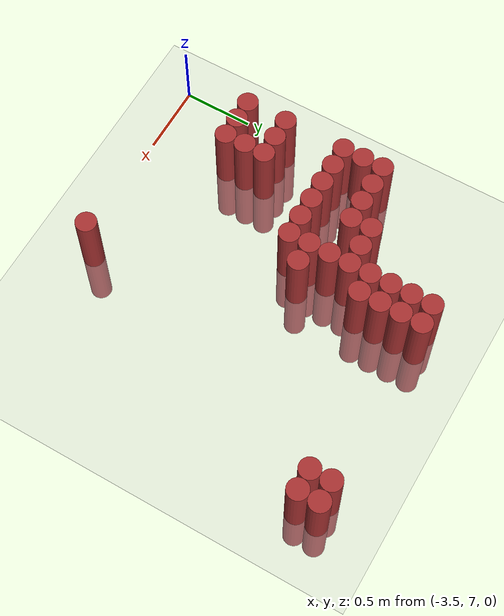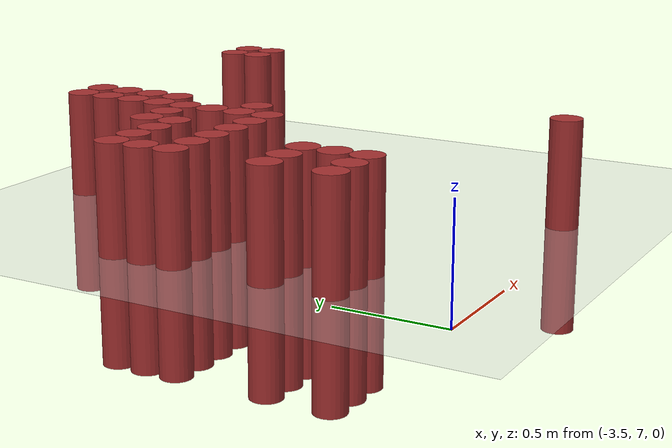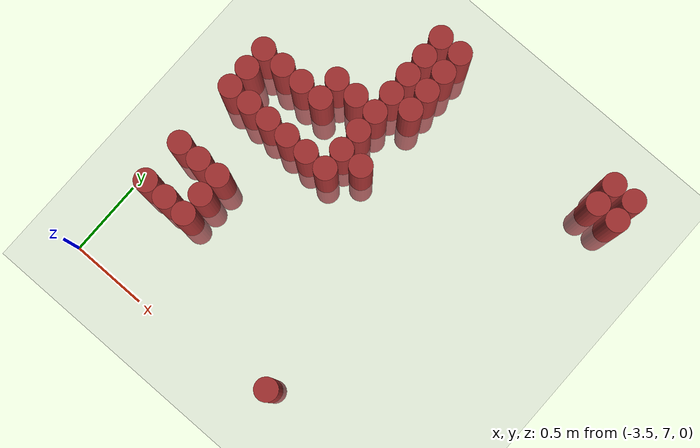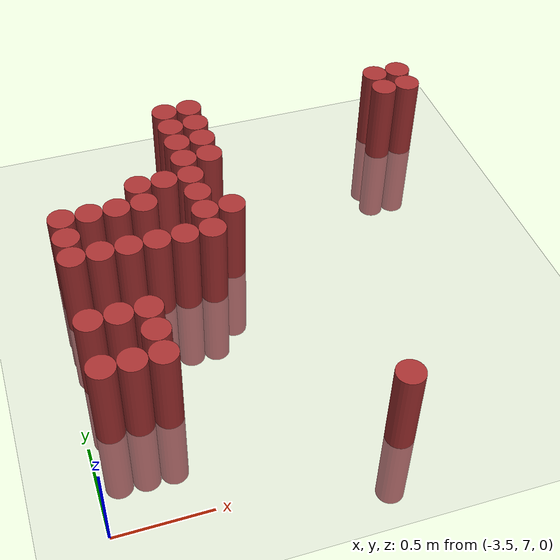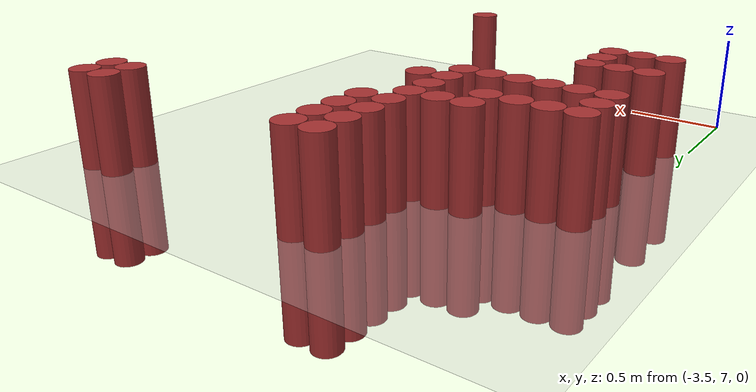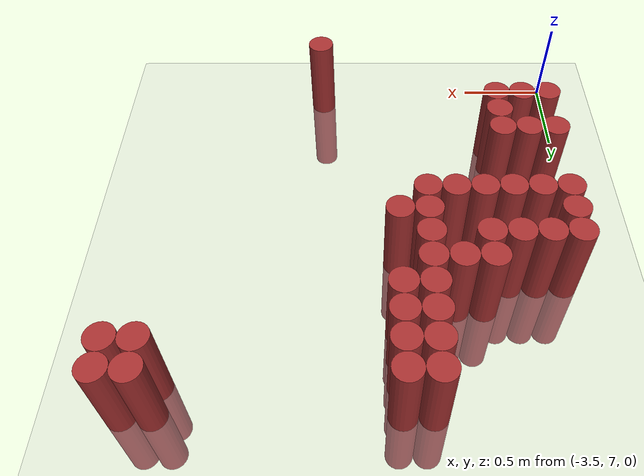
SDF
<sdf version="1.6">
 <world name="default">
  <model name="ground_plane">
   <static>1</static>
   <link name="link">
    <collision name="collision">
     <geometry><plane><normal>0 0 1</normal><size>100 100</size></plane></geometry>
     <surface><friction><ode><mu>100</mu><mu2>50</mu2></ode></friction></surface>
    </collision>
    <visual name="visual">
     <cast_shadows>0</cast_shadows>
     <geometry><plane><normal>0 0 1</normal><size>100 100</size></plane></geometry>
     <material>
      <script><uri>file://media/materials/scripts/gazebo.material</uri><name>Gazebo/Grey</name></script>
     </material>
    </visual>
   </link>
  </model>
  <model name="unit_cylinder_189">
   <static>1</static>
   <pose>-3.375000 7.575000 0.000000 0.000000 0.000000 0.000000</pose>
   <link name="link">
    <inertial>
     <mass>1</mass>
     <inertia><ixx>0.145833</ixx><ixy>0</ixy><ixz>0</ixz><iyy>0.145833</iyy><iyz>0</iyz><izz>0.125</izz></inertia>
    </inertial>
    <collision name="collision">
     <geometry><cylinder><radius>0.075000</radius><length>1</length></cylinder></geometry>
    </collision>
    <visual name="visual">
     <geometry><cylinder><radius>0.075000</radius><length>1</length></cylinder></geometry>
     <material>
      <ambient>0.648000 0.192000 0.192000 1</ambient>
      <diffuse>0.648000 0.192000 0.192000 1</diffuse>
     </material>
     <material>
      <script><name>Gazebo/Grey</name><uri>file://media/materials/scripts/gazebo.material</uri></script>
     </material>
    </visual>
    <sensor name="sensor_contact" type="contact"><contact><collision>collision</collision></contact></sensor>
   </link>
   <plugin filename="gz-sim-touchplugin-system" name="gz::sim::systems::TouchPlugin">
    <target>robot</target>
    <namespace>robot</namespace>
    <time>0.001</time>
    <enabled>true</enabled>
   </plugin>
  </model>
  <model name="unit_cylinder_190">
   <static>1</static>
   <pose>-3.375000 7.875000 0.000000 0.000000 0.000000 0.000000</pose>
   <link name="link">
    <inertial>
     <mass>1</mass>
     <inertia><ixx>0.145833</ixx><ixy>0</ixy><ixz>0</ixz><iyy>0.145833</iyy><iyz>0</iyz><izz>0.125</izz></inertia>
    </inertial>
    <collision name="collision">
     <geometry><cylinder><radius>0.075000</radius><length>1</length></cylinder></geometry>
    </collision>
    <visual name="visual">
     <geometry><cylinder><radius>0.075000</radius><length>1</length></cylinder></geometry>
     <material>
      <ambient>0.648000 0.192000 0.192000 1</ambient>
      <diffuse>0.648000 0.192000 0.192000 1</diffuse>
     </material>
     <material>
      <script><name>Gazebo/Grey</name><uri>file://media/materials/scripts/gazebo.material</uri></script>
     </material>
    </visual>
    <sensor name="sensor_contact" type="contact"><contact><collision>collision</collision></contact></sensor>
   </link>
   <plugin filename="gz-sim-touchplugin-system" name="gz::sim::systems::TouchPlugin">
    <target>robot</target>
    <namespace>robot</namespace>
    <time>0.001</time>
    <enabled>true</enabled>
   </plugin>
  </model>
  <model name="unit_cylinder_191">
   <static>1</static>
   <pose>-3.375000 8.325000 0.000000 0.000000 0.000000 0.000000</pose>
   <link name="link">
    <inertial>
     <mass>1</mass>
     <inertia><ixx>0.145833</ixx><ixy>0</ixy><ixz>0</ixz><iyy>0.145833</iyy><iyz>0</iyz><izz>0.125</izz></inertia>
    </inertial>
    <collision name="collision">
     <geometry><cylinder><radius>0.075000</radius><length>1</length></cylinder></geometry>
    </collision>
    <visual name="visual">
     <geometry><cylinder><radius>0.075000</radius><length>1</length></cylinder></geometry>
     <material>
      <ambient>0.648000 0.192000 0.192000 1</ambient>
      <diffuse>0.648000 0.192000 0.192000 1</diffuse>
     </material>
     <material>
      <script><name>Gazebo/Grey</name><uri>file://media/materials/scripts/gazebo.material</uri></script>
     </material>
    </visual>
    <sensor name="sensor_contact" type="contact"><contact><collision>collision</collision></contact></sensor>
   </link>
   <plugin filename="gz-sim-touchplugin-system" name="gz::sim::systems::TouchPlugin">
    <target>robot</target>
    <namespace>robot</namespace>
    <time>0.001</time>
    <enabled>true</enabled>
   </plugin>
  </model>
  <model name="unit_cylinder_192">
   <static>1</static>
   <pose>-3.375000 8.475000 0.000000 0.000000 0.000000 0.000000</pose>
   <link name="link">
    <inertial>
     <mass>1</mass>
     <inertia><ixx>0.145833</ixx><ixy>0</ixy><ixz>0</ixz><iyy>0.145833</iyy><iyz>0</iyz><izz>0.125</izz></inertia>
    </inertial>
    <collision name="collision">
     <geometry><cylinder><radius>0.075000</radius><length>1</length></cylinder></geometry>
    </collision>
    <visual name="visual">
     <geometry><cylinder><radius>0.075000</radius><length>1</length></cylinder></geometry>
     <material>
      <ambient>0.648000 0.192000 0.192000 1</ambient>
      <diffuse>0.648000 0.192000 0.192000 1</diffuse>
     </material>
     <material>
      <script><name>Gazebo/Grey</name><uri>file://media/materials/scripts/gazebo.material</uri></script>
     </material>
    </visual>
    <sensor name="sensor_contact" type="contact"><contact><collision>collision</collision></contact></sensor>
   </link>
   <plugin filename="gz-sim-touchplugin-system" name="gz::sim::systems::TouchPlugin">
    <target>robot</target>
    <namespace>robot</namespace>
    <time>0.001</time>
    <enabled>true</enabled>
   </plugin>
  </model>
  <model name="unit_cylinder_193">
   <static>1</static>
   <pose>-3.375000 8.625000 0.000000 0.000000 0.000000 0.000000</pose>
   <link name="link">
    <inertial>
     <mass>1</mass>
     <inertia><ixx>0.145833</ixx><ixy>0</ixy><ixz>0</ixz><iyy>0.145833</iyy><iyz>0</iyz><izz>0.125</izz></inertia>
    </inertial>
    <collision name="collision">
     <geometry><cylinder><radius>0.075000</radius><length>1</length></cylinder></geometry>
    </collision>
    <visual name="visual">
     <geometry><cylinder><radius>0.075000</radius><length>1</length></cylinder></geometry>
     <material>
      <ambient>0.648000 0.192000 0.192000 1</ambient>
      <diffuse>0.648000 0.192000 0.192000 1</diffuse>
     </material>
     <material>
      <script><name>Gazebo/Grey</name><uri>file://media/materials/scripts/gazebo.material</uri></script>
     </material>
    </visual>
    <sensor name="sensor_contact" type="contact"><contact><collision>collision</collision></contact></sensor>
   </link>
   <plugin filename="gz-sim-touchplugin-system" name="gz::sim::systems::TouchPlugin">
    <target>robot</target>
    <namespace>robot</namespace>
    <time>0.001</time>
    <enabled>true</enabled>
   </plugin>
  </model>
  <model name="unit_cylinder_194">
   <static>1</static>
   <pose>-3.225000 7.575000 0.000000 0.000000 0.000000 0.000000</pose>
   <link name="link">
    <inertial>
     <mass>1</mass>
     <inertia><ixx>0.145833</ixx><ixy>0</ixy><ixz>0</ixz><iyy>0.145833</iyy><iyz>0</iyz><izz>0.125</izz></inertia>
    </inertial>
    <collision name="collision">
     <geometry><cylinder><radius>0.075000</radius><length>1</length></cylinder></geometry>
    </collision>
    <visual name="visual">
     <geometry><cylinder><radius>0.075000</radius><length>1</length></cylinder></geometry>
     <material>
      <ambient>0.648000 0.192000 0.192000 1</ambient>
      <diffuse>0.648000 0.192000 0.192000 1</diffuse>
     </material>
     <material>
      <script><name>Gazebo/Grey</name><uri>file://media/materials/scripts/gazebo.material</uri></script>
     </material>
    </visual>
    <sensor name="sensor_contact" type="contact"><contact><collision>collision</collision></contact></sensor>
   </link>
   <plugin filename="gz-sim-touchplugin-system" name="gz::sim::systems::TouchPlugin">
    <target>robot</target>
    <namespace>robot</namespace>
    <time>0.001</time>
    <enabled>true</enabled>
   </plugin>
  </model>
  <model name="unit_cylinder_195">
   <static>1</static>
   <pose>-3.225000 7.875000 0.000000 0.000000 0.000000 0.000000</pose>
   <link name="link">
    <inertial>
     <mass>1</mass>
     <inertia><ixx>0.145833</ixx><ixy>0</ixy><ixz>0</ixz><iyy>0.145833</iyy><iyz>0</iyz><izz>0.125</izz></inertia>
    </inertial>
    <collision name="collision">
     <geometry><cylinder><radius>0.075000</radius><length>1</length></cylinder></geometry>
    </collision>
    <visual name="visual">
     <geometry><cylinder><radius>0.075000</radius><length>1</length></cylinder></geometry>
     <material>
      <ambient>0.648000 0.192000 0.192000 1</ambient>
      <diffuse>0.648000 0.192000 0.192000 1</diffuse>
     </material>
     <material>
      <script><name>Gazebo/Grey</name><uri>file://media/materials/scripts/gazebo.material</uri></script>
     </material>
    </visual>
    <sensor name="sensor_contact" type="contact"><contact><collision>collision</collision></contact></sensor>
   </link>
   <plugin filename="gz-sim-touchplugin-system" name="gz::sim::systems::TouchPlugin">
    <target>robot</target>
    <namespace>robot</namespace>
    <time>0.001</time>
    <enabled>true</enabled>
   </plugin>
  </model>
  <model name="unit_cylinder_196">
   <static>1</static>
   <pose>-3.225000 8.325000 0.000000 0.000000 0.000000 0.000000</pose>
   <link name="link">
    <inertial>
     <mass>1</mass>
     <inertia><ixx>0.145833</ixx><ixy>0</ixy><ixz>0</ixz><iyy>0.145833</iyy><iyz>0</iyz><izz>0.125</izz></inertia>
    </inertial>
    <collision name="collision">
     <geometry><cylinder><radius>0.075000</radius><length>1</length></cylinder></geometry>
    </collision>
    <visual name="visual">
     <geometry><cylinder><radius>0.075000</radius><length>1</length></cylinder></geometry>
     <material>
      <ambient>0.648000 0.192000 0.192000 1</ambient>
      <diffuse>0.648000 0.192000 0.192000 1</diffuse>
     </material>
     <material>
      <script><name>Gazebo/Grey</name><uri>file://media/materials/scripts/gazebo.material</uri></script>
     </material>
    </visual>
    <sensor name="sensor_contact" type="contact"><contact><collision>collision</collision></contact></sensor>
   </link>
   <plugin filename="gz-sim-touchplugin-system" name="gz::sim::systems::TouchPlugin">
    <target>robot</target>
    <namespace>robot</namespace>
    <time>0.001</time>
    <enabled>true</enabled>
   </plugin>
  </model>
  <model name="unit_cylinder_197">
   <static>1</static>
   <pose>-3.225000 8.625000 0.000000 0.000000 0.000000 0.000000</pose>
   <link name="link">
    <inertial>
     <mass>1</mass>
     <inertia><ixx>0.145833</ixx><ixy>0</ixy><ixz>0</ixz><iyy>0.145833</iyy><iyz>0</iyz><izz>0.125</izz></inertia>
    </inertial>
    <collision name="collision">
     <geometry><cylinder><radius>0.075000</radius><length>1</length></cylinder></geometry>
    </collision>
    <visual name="visual">
     <geometry><cylinder><radius>0.075000</radius><length>1</length></cylinder></geometry>
     <material>
      <ambient>0.648000 0.192000 0.192000 1</ambient>
      <diffuse>0.648000 0.192000 0.192000 1</diffuse>
     </material>
     <material>
      <script><name>Gazebo/Grey</name><uri>file://media/materials/scripts/gazebo.material</uri></script>
     </material>
    </visual>
    <sensor name="sensor_contact" type="contact"><contact><collision>collision</collision></contact></sensor>
   </link>
   <plugin filename="gz-sim-touchplugin-system" name="gz::sim::systems::TouchPlugin">
    <target>robot</target>
    <namespace>robot</namespace>
    <time>0.001</time>
    <enabled>true</enabled>
   </plugin>
  </model>
  <model name="unit_cylinder_199">
   <static>1</static>
   <pose>-3.075000 7.575000 0.000000 0.000000 0.000000 0.000000</pose>
   <link name="link">
    <inertial>
     <mass>1</mass>
     <inertia><ixx>0.145833</ixx><ixy>0</ixy><ixz>0</ixz><iyy>0.145833</iyy><iyz>0</iyz><izz>0.125</izz></inertia>
    </inertial>
    <collision name="collision">
     <geometry><cylinder><radius>0.075000</radius><length>1</length></cylinder></geometry>
    </collision>
    <visual name="visual">
     <geometry><cylinder><radius>0.075000</radius><length>1</length></cylinder></geometry>
     <material>
      <ambient>0.648000 0.192000 0.192000 1</ambient>
      <diffuse>0.648000 0.192000 0.192000 1</diffuse>
     </material>
     <material>
      <script><name>Gazebo/Grey</name><uri>file://media/materials/scripts/gazebo.material</uri></script>
     </material>
    </visual>
    <sensor name="sensor_contact" type="contact"><contact><collision>collision</collision></contact></sensor>
   </link>
   <plugin filename="gz-sim-touchplugin-system" name="gz::sim::systems::TouchPlugin">
    <target>robot</target>
    <namespace>robot</namespace>
    <time>0.001</time>
    <enabled>true</enabled>
   </plugin>
  </model>
  <model name="unit_cylinder_200">
   <static>1</static>
   <pose>-3.075000 7.725000 0.000000 0.000000 0.000000 0.000000</pose>
   <link name="link">
    <inertial>
     <mass>1</mass>
     <inertia><ixx>0.145833</ixx><ixy>0</ixy><ixz>0</ixz><iyy>0.145833</iyy><iyz>0</iyz><izz>0.125</izz></inertia>
    </inertial>
    <collision name="collision">
     <geometry><cylinder><radius>0.075000</radius><length>1</length></cylinder></geometry>
    </collision>
    <visual name="visual">
     <geometry><cylinder><radius>0.075000</radius><length>1</length></cylinder></geometry>
     <material>
      <ambient>0.648000 0.192000 0.192000 1</ambient>
      <diffuse>0.648000 0.192000 0.192000 1</diffuse>
     </material>
     <material>
      <script><name>Gazebo/Grey</name><uri>file://media/materials/scripts/gazebo.material</uri></script>
     </material>
    </visual>
    <sensor name="sensor_contact" type="contact"><contact><collision>collision</collision></contact></sensor>
   </link>
   <plugin filename="gz-sim-touchplugin-system" name="gz::sim::systems::TouchPlugin">
    <target>robot</target>
    <namespace>robot</namespace>
    <time>0.001</time>
    <enabled>true</enabled>
   </plugin>
  </model>
  <model name="unit_cylinder_201">
   <static>1</static>
   <pose>-3.075000 7.875000 0.000000 0.000000 0.000000 0.000000</pose>
   <link name="link">
    <inertial>
     <mass>1</mass>
     <inertia><ixx>0.145833</ixx><ixy>0</ixy><ixz>0</ixz><iyy>0.145833</iyy><iyz>0</iyz><izz>0.125</izz></inertia>
    </inertial>
    <collision name="collision">
     <geometry><cylinder><radius>0.075000</radius><length>1</length></cylinder></geometry>
    </collision>
    <visual name="visual">
     <geometry><cylinder><radius>0.075000</radius><length>1</length></cylinder></geometry>
     <material>
      <ambient>0.648000 0.192000 0.192000 1</ambient>
      <diffuse>0.648000 0.192000 0.192000 1</diffuse>
     </material>
     <material>
      <script><name>Gazebo/Grey</name><uri>file://media/materials/scripts/gazebo.material</uri></script>
     </material>
    </visual>
    <sensor name="sensor_contact" type="contact"><contact><collision>collision</collision></contact></sensor>
   </link>
   <plugin filename="gz-sim-touchplugin-system" name="gz::sim::systems::TouchPlugin">
    <target>robot</target>
    <namespace>robot</namespace>
    <time>0.001</time>
    <enabled>true</enabled>
   </plugin>
  </model>
  <model name="unit_cylinder_202">
   <static>1</static>
   <pose>-3.075000 8.325000 0.000000 0.000000 0.000000 0.000000</pose>
   <link name="link">
    <inertial>
     <mass>1</mass>
     <inertia><ixx>0.145833</ixx><ixy>0</ixy><ixz>0</ixz><iyy>0.145833</iyy><iyz>0</iyz><izz>0.125</izz></inertia>
    </inertial>
    <collision name="collision">
     <geometry><cylinder><radius>0.075000</radius><length>1</length></cylinder></geometry>
    </collision>
    <visual name="visual">
     <geometry><cylinder><radius>0.075000</radius><length>1</length></cylinder></geometry>
     <material>
      <ambient>0.648000 0.192000 0.192000 1</ambient>
      <diffuse>0.648000 0.192000 0.192000 1</diffuse>
     </material>
     <material>
      <script><name>Gazebo/Grey</name><uri>file://media/materials/scripts/gazebo.material</uri></script>
     </material>
    </visual>
    <sensor name="sensor_contact" type="contact"><contact><collision>collision</collision></contact></sensor>
   </link>
   <plugin filename="gz-sim-touchplugin-system" name="gz::sim::systems::TouchPlugin">
    <target>robot</target>
    <namespace>robot</namespace>
    <time>0.001</time>
    <enabled>true</enabled>
   </plugin>
  </model>
  <model name="unit_cylinder_203">
   <static>1</static>
   <pose>-3.075000 8.625000 0.000000 0.000000 0.000000 0.000000</pose>
   <link name="link">
    <inertial>
     <mass>1</mass>
     <inertia><ixx>0.145833</ixx><ixy>0</ixy><ixz>0</ixz><iyy>0.145833</iyy><iyz>0</iyz><izz>0.125</izz></inertia>
    </inertial>
    <collision name="collision">
     <geometry><cylinder><radius>0.075000</radius><length>1</length></cylinder></geometry>
    </collision>
    <visual name="visual">
     <geometry><cylinder><radius>0.075000</radius><length>1</length></cylinder></geometry>
     <material>
      <ambient>0.648000 0.192000 0.192000 1</ambient>
      <diffuse>0.648000 0.192000 0.192000 1</diffuse>
     </material>
     <material>
      <script><name>Gazebo/Grey</name><uri>file://media/materials/scripts/gazebo.material</uri></script>
     </material>
    </visual>
    <sensor name="sensor_contact" type="contact"><contact><collision>collision</collision></contact></sensor>
   </link>
   <plugin filename="gz-sim-touchplugin-system" name="gz::sim::systems::TouchPlugin">
    <target>robot</target>
    <namespace>robot</namespace>
    <time>0.001</time>
    <enabled>true</enabled>
   </plugin>
  </model>
  <model name="unit_cylinder_207">
   <static>1</static>
   <pose>-2.925000 8.325000 0.000000 0.000000 0.000000 0.000000</pose>
   <link name="link">
    <inertial>
     <mass>1</mass>
     <inertia><ixx>0.145833</ixx><ixy>0</ixy><ixz>0</ixz><iyy>0.145833</iyy><iyz>0</iyz><izz>0.125</izz></inertia>
    </inertial>
    <collision name="collision">
     <geometry><cylinder><radius>0.075000</radius><length>1</length></cylinder></geometry>
    </collision>
    <visual name="visual">
     <geometry><cylinder><radius>0.075000</radius><length>1</length></cylinder></geometry>
     <material>
      <ambient>0.648000 0.192000 0.192000 1</ambient>
      <diffuse>0.648000 0.192000 0.192000 1</diffuse>
     </material>
     <material>
      <script><name>Gazebo/Grey</name><uri>file://media/materials/scripts/gazebo.material</uri></script>
     </material>
    </visual>
    <sensor name="sensor_contact" type="contact"><contact><collision>collision</collision></contact></sensor>
   </link>
   <plugin filename="gz-sim-touchplugin-system" name="gz::sim::systems::TouchPlugin">
    <target>robot</target>
    <namespace>robot</namespace>
    <time>0.001</time>
    <enabled>true</enabled>
   </plugin>
  </model>
  <model name="unit_cylinder_208">
   <static>1</static>
   <pose>-2.925000 8.625000 0.000000 0.000000 0.000000 0.000000</pose>
   <link name="link">
    <inertial>
     <mass>1</mass>
     <inertia><ixx>0.145833</ixx><ixy>0</ixy><ixz>0</ixz><iyy>0.145833</iyy><iyz>0</iyz><izz>0.125</izz></inertia>
    </inertial>
    <collision name="collision">
     <geometry><cylinder><radius>0.075000</radius><length>1</length></cylinder></geometry>
    </collision>
    <visual name="visual">
     <geometry><cylinder><radius>0.075000</radius><length>1</length></cylinder></geometry>
     <material>
      <ambient>0.648000 0.192000 0.192000 1</ambient>
      <diffuse>0.648000 0.192000 0.192000 1</diffuse>
     </material>
     <material>
      <script><name>Gazebo/Grey</name><uri>file://media/materials/scripts/gazebo.material</uri></script>
     </material>
    </visual>
    <sensor name="sensor_contact" type="contact"><contact><collision>collision</collision></contact></sensor>
   </link>
   <plugin filename="gz-sim-touchplugin-system" name="gz::sim::systems::TouchPlugin">
    <target>robot</target>
    <namespace>robot</namespace>
    <time>0.001</time>
    <enabled>true</enabled>
   </plugin>
  </model>
  <model name="unit_cylinder_209">
   <static>1</static>
   <pose>-2.925000 8.775000 0.000000 0.000000 0.000000 0.000000</pose>
   <link name="link">
    <inertial>
     <mass>1</mass>
     <inertia><ixx>0.145833</ixx><ixy>0</ixy><ixz>0</ixz><iyy>0.145833</iyy><iyz>0</iyz><izz>0.125</izz></inertia>
    </inertial>
    <collision name="collision">
     <geometry><cylinder><radius>0.075000</radius><length>1</length></cylinder></geometry>
    </collision>
    <visual name="visual">
     <geometry><cylinder><radius>0.075000</radius><length>1</length></cylinder></geometry>
     <material>
      <ambient>0.648000 0.192000 0.192000 1</ambient>
      <diffuse>0.648000 0.192000 0.192000 1</diffuse>
     </material>
     <material>
      <script><name>Gazebo/Grey</name><uri>file://media/materials/scripts/gazebo.material</uri></script>
     </material>
    </visual>
    <sensor name="sensor_contact" type="contact"><contact><collision>collision</collision></contact></sensor>
   </link>
   <plugin filename="gz-sim-touchplugin-system" name="gz::sim::systems::TouchPlugin">
    <target>robot</target>
    <namespace>robot</namespace>
    <time>0.001</time>
    <enabled>true</enabled>
   </plugin>
  </model>
  <model name="unit_cylinder_211">
   <static>1</static>
   <pose>-2.775000 8.325000 0.000000 0.000000 0.000000 0.000000</pose>
   <link name="link">
    <inertial>
     <mass>1</mass>
     <inertia><ixx>0.145833</ixx><ixy>0</ixy><ixz>0</ixz><iyy>0.145833</iyy><iyz>0</iyz><izz>0.125</izz></inertia>
    </inertial>
    <collision name="collision">
     <geometry><cylinder><radius>0.075000</radius><length>1</length></cylinder></geometry>
    </collision>
    <visual name="visual">
     <geometry><cylinder><radius>0.075000</radius><length>1</length></cylinder></geometry>
     <material>
      <ambient>0.648000 0.192000 0.192000 1</ambient>
      <diffuse>0.648000 0.192000 0.192000 1</diffuse>
     </material>
     <material>
      <script><name>Gazebo/Grey</name><uri>file://media/materials/scripts/gazebo.material</uri></script>
     </material>
    </visual>
    <sensor name="sensor_contact" type="contact"><contact><collision>collision</collision></contact></sensor>
   </link>
   <plugin filename="gz-sim-touchplugin-system" name="gz::sim::systems::TouchPlugin">
    <target>robot</target>
    <namespace>robot</namespace>
    <time>0.001</time>
    <enabled>true</enabled>
   </plugin>
  </model>
  <model name="unit_cylinder_212">
   <static>1</static>
   <pose>-2.775000 8.775000 0.000000 0.000000 0.000000 0.000000</pose>
   <link name="link">
    <inertial>
     <mass>1</mass>
     <inertia><ixx>0.145833</ixx><ixy>0</ixy><ixz>0</ixz><iyy>0.145833</iyy><iyz>0</iyz><izz>0.125</izz></inertia>
    </inertial>
    <collision name="collision">
     <geometry><cylinder><radius>0.075000</radius><length>1</length></cylinder></geometry>
    </collision>
    <visual name="visual">
     <geometry><cylinder><radius>0.075000</radius><length>1</length></cylinder></geometry>
     <material>
      <ambient>0.648000 0.192000 0.192000 1</ambient>
      <diffuse>0.648000 0.192000 0.192000 1</diffuse>
     </material>
     <material>
      <script><name>Gazebo/Grey</name><uri>file://media/materials/scripts/gazebo.material</uri></script>
     </material>
    </visual>
    <sensor name="sensor_contact" type="contact"><contact><collision>collision</collision></contact></sensor>
   </link>
   <plugin filename="gz-sim-touchplugin-system" name="gz::sim::systems::TouchPlugin">
    <target>robot</target>
    <namespace>robot</namespace>
    <time>0.001</time>
    <enabled>true</enabled>
   </plugin>
  </model>
  <model name="unit_cylinder_218">
   <static>1</static>
   <pose>-2.625000 8.325000 0.000000 0.000000 0.000000 0.000000</pose>
   <link name="link">
    <inertial>
     <mass>1</mass>
     <inertia><ixx>0.145833</ixx><ixy>0</ixy><ixz>0</ixz><iyy>0.145833</iyy><iyz>0</iyz><izz>0.125</izz></inertia>
    </inertial>
    <collision name="collision">
     <geometry><cylinder><radius>0.075000</radius><length>1</length></cylinder></geometry>
    </collision>
    <visual name="visual">
     <geometry><cylinder><radius>0.075000</radius><length>1</length></cylinder></geometry>
     <material>
      <ambient>0.648000 0.192000 0.192000 1</ambient>
      <diffuse>0.648000 0.192000 0.192000 1</diffuse>
     </material>
     <material>
      <script><name>Gazebo/Grey</name><uri>file://media/materials/scripts/gazebo.material</uri></script>
     </material>
    </visual>
    <sensor name="sensor_contact" type="contact"><contact><collision>collision</collision></contact></sensor>
   </link>
   <plugin filename="gz-sim-touchplugin-system" name="gz::sim::systems::TouchPlugin">
    <target>robot</target>
    <namespace>robot</namespace>
    <time>0.001</time>
    <enabled>true</enabled>
   </plugin>
  </model>
  <model name="unit_cylinder_219">
   <static>1</static>
   <pose>-2.625000 8.475000 0.000000 0.000000 0.000000 0.000000</pose>
   <link name="link">
    <inertial>
     <mass>1</mass>
     <inertia><ixx>0.145833</ixx><ixy>0</ixy><ixz>0</ixz><iyy>0.145833</iyy><iyz>0</iyz><izz>0.125</izz></inertia>
    </inertial>
    <collision name="collision">
     <geometry><cylinder><radius>0.075000</radius><length>1</length></cylinder></geometry>
    </collision>
    <visual name="visual">
     <geometry><cylinder><radius>0.075000</radius><length>1</length></cylinder></geometry>
     <material>
      <ambient>0.648000 0.192000 0.192000 1</ambient>
      <diffuse>0.648000 0.192000 0.192000 1</diffuse>
     </material>
     <material>
      <script><name>Gazebo/Grey</name><uri>file://media/materials/scripts/gazebo.material</uri></script>
     </material>
    </visual>
    <sensor name="sensor_contact" type="contact"><contact><collision>collision</collision></contact></sensor>
   </link>
   <plugin filename="gz-sim-touchplugin-system" name="gz::sim::systems::TouchPlugin">
    <target>robot</target>
    <namespace>robot</namespace>
    <time>0.001</time>
    <enabled>true</enabled>
   </plugin>
  </model>
  <model name="unit_cylinder_220">
   <static>1</static>
   <pose>-2.625000 8.625000 0.000000 0.000000 0.000000 0.000000</pose>
   <link name="link">
    <inertial>
     <mass>1</mass>
     <inertia><ixx>0.145833</ixx><ixy>0</ixy><ixz>0</ixz><iyy>0.145833</iyy><iyz>0</iyz><izz>0.125</izz></inertia>
    </inertial>
    <collision name="collision">
     <geometry><cylinder><radius>0.075000</radius><length>1</length></cylinder></geometry>
    </collision>
    <visual name="visual">
     <geometry><cylinder><radius>0.075000</radius><length>1</length></cylinder></geometry>
     <material>
      <ambient>0.648000 0.192000 0.192000 1</ambient>
      <diffuse>0.648000 0.192000 0.192000 1</diffuse>
     </material>
     <material>
      <script><name>Gazebo/Grey</name><uri>file://media/materials/scripts/gazebo.material</uri></script>
     </material>
    </visual>
    <sensor name="sensor_contact" type="contact"><contact><collision>collision</collision></contact></sensor>
   </link>
   <plugin filename="gz-sim-touchplugin-system" name="gz::sim::systems::TouchPlugin">
    <target>robot</target>
    <namespace>robot</namespace>
    <time>0.001</time>
    <enabled>true</enabled>
   </plugin>
  </model>
  <model name="unit_cylinder_221">
   <static>1</static>
   <pose>-2.625000 8.775000 0.000000 0.000000 0.000000 0.000000</pose>
   <link name="link">
    <inertial>
     <mass>1</mass>
     <inertia><ixx>0.145833</ixx><ixy>0</ixy><ixz>0</ixz><iyy>0.145833</iyy><iyz>0</iyz><izz>0.125</izz></inertia>
    </inertial>
    <collision name="collision">
     <geometry><cylinder><radius>0.075000</radius><length>1</length></cylinder></geometry>
    </collision>
    <visual name="visual">
     <geometry><cylinder><radius>0.075000</radius><length>1</length></cylinder></geometry>
     <material>
      <ambient>0.648000 0.192000 0.192000 1</ambient>
      <diffuse>0.648000 0.192000 0.192000 1</diffuse>
     </material>
     <material>
      <script><name>Gazebo/Grey</name><uri>file://media/materials/scripts/gazebo.material</uri></script>
     </material>
    </visual>
    <sensor name="sensor_contact" type="contact"><contact><collision>collision</collision></contact></sensor>
   </link>
   <plugin filename="gz-sim-touchplugin-system" name="gz::sim::systems::TouchPlugin">
    <target>robot</target>
    <namespace>robot</namespace>
    <time>0.001</time>
    <enabled>true</enabled>
   </plugin>
  </model>
  <model name="unit_cylinder_222">
   <static>1</static>
   <pose>-2.625000 8.925000 0.000000 0.000000 0.000000 0.000000</pose>
   <link name="link">
    <inertial>
     <mass>1</mass>
     <inertia><ixx>0.145833</ixx><ixy>0</ixy><ixz>0</ixz><iyy>0.145833</iyy><iyz>0</iyz><izz>0.125</izz></inertia>
    </inertial>
    <collision name="collision">
     <geometry><cylinder><radius>0.075000</radius><length>1</length></cylinder></geometry>
    </collision>
    <visual name="visual">
     <geometry><cylinder><radius>0.075000</radius><length>1</length></cylinder></geometry>
     <material>
      <ambient>0.648000 0.192000 0.192000 1</ambient>
      <diffuse>0.648000 0.192000 0.192000 1</diffuse>
     </material>
     <material>
      <script><name>Gazebo/Grey</name><uri>file://media/materials/scripts/gazebo.material</uri></script>
     </material>
    </visual>
    <sensor name="sensor_contact" type="contact"><contact><collision>collision</collision></contact></sensor>
   </link>
   <plugin filename="gz-sim-touchplugin-system" name="gz::sim::systems::TouchPlugin">
    <target>robot</target>
    <namespace>robot</namespace>
    <time>0.001</time>
    <enabled>true</enabled>
   </plugin>
  </model>
  <model name="unit_cylinder_223">
   <static>1</static>
   <pose>-2.625000 9.075000 0.000000 0.000000 0.000000 0.000000</pose>
   <link name="link">
    <inertial>
     <mass>1</mass>
     <inertia><ixx>0.145833</ixx><ixy>0</ixy><ixz>0</ixz><iyy>0.145833</iyy><iyz>0</iyz><izz>0.125</izz></inertia>
    </inertial>
    <collision name="collision">
     <geometry><cylinder><radius>0.075000</radius><length>1</length></cylinder></geometry>
    </collision>
    <visual name="visual">
     <geometry><cylinder><radius>0.075000</radius><length>1</length></cylinder></geometry>
     <material>
      <ambient>0.648000 0.192000 0.192000 1</ambient>
      <diffuse>0.648000 0.192000 0.192000 1</diffuse>
     </material>
     <material>
      <script><name>Gazebo/Grey</name><uri>file://media/materials/scripts/gazebo.material</uri></script>
     </material>
    </visual>
    <sensor name="sensor_contact" type="contact"><contact><collision>collision</collision></contact></sensor>
   </link>
   <plugin filename="gz-sim-touchplugin-system" name="gz::sim::systems::TouchPlugin">
    <target>robot</target>
    <namespace>robot</namespace>
    <time>0.001</time>
    <enabled>true</enabled>
   </plugin>
  </model>
  <model name="unit_cylinder_224">
   <static>1</static>
   <pose>-2.625000 9.225000 0.000000 0.000000 0.000000 0.000000</pose>
   <link name="link">
    <inertial>
     <mass>1</mass>
     <inertia><ixx>0.145833</ixx><ixy>0</ixy><ixz>0</ixz><iyy>0.145833</iyy><iyz>0</iyz><izz>0.125</izz></inertia>
    </inertial>
    <collision name="collision">
     <geometry><cylinder><radius>0.075000</radius><length>1</length></cylinder></geometry>
    </collision>
    <visual name="visual">
     <geometry><cylinder><radius>0.075000</radius><length>1</length></cylinder></geometry>
     <material>
      <ambient>0.648000 0.192000 0.192000 1</ambient>
      <diffuse>0.648000 0.192000 0.192000 1</diffuse>
     </material>
     <material>
      <script><name>Gazebo/Grey</name><uri>file://media/materials/scripts/gazebo.material</uri></script>
     </material>
    </visual>
    <sensor name="sensor_contact" type="contact"><contact><collision>collision</collision></contact></sensor>
   </link>
   <plugin filename="gz-sim-touchplugin-system" name="gz::sim::systems::TouchPlugin">
    <target>robot</target>
    <namespace>robot</namespace>
    <time>0.001</time>
    <enabled>true</enabled>
   </plugin>
  </model>
  <model name="unit_cylinder_225">
   <static>1</static>
   <pose>-2.625000 9.375000 0.000000 0.000000 0.000000 0.000000</pose>
   <link name="link">
    <inertial>
     <mass>1</mass>
     <inertia><ixx>0.145833</ixx><ixy>0</ixy><ixz>0</ixz><iyy>0.145833</iyy><iyz>0</iyz><izz>0.125</izz></inertia>
    </inertial>
    <collision name="collision">
     <geometry><cylinder><radius>0.075000</radius><length>1</length></cylinder></geometry>
    </collision>
    <visual name="visual">
     <geometry><cylinder><radius>0.075000</radius><length>1</length></cylinder></geometry>
     <material>
      <ambient>0.648000 0.192000 0.192000 1</ambient>
      <diffuse>0.648000 0.192000 0.192000 1</diffuse>
     </material>
     <material>
      <script><name>Gazebo/Grey</name><uri>file://media/materials/scripts/gazebo.material</uri></script>
     </material>
    </visual>
    <sensor name="sensor_contact" type="contact"><contact><collision>collision</collision></contact></sensor>
   </link>
   <plugin filename="gz-sim-touchplugin-system" name="gz::sim::systems::TouchPlugin">
    <target>robot</target>
    <namespace>robot</namespace>
    <time>0.001</time>
    <enabled>true</enabled>
   </plugin>
  </model>
  <model name="unit_cylinder_233">
   <static>1</static>
   <pose>-2.475000 8.475000 0.000000 0.000000 0.000000 0.000000</pose>
   <link name="link">
    <inertial>
     <mass>1</mass>
     <inertia><ixx>0.145833</ixx><ixy>0</ixy><ixz>0</ixz><iyy>0.145833</iyy><iyz>0</iyz><izz>0.125</izz></inertia>
    </inertial>
    <collision name="collision">
     <geometry><cylinder><radius>0.075000</radius><length>1</length></cylinder></geometry>
    </collision>
    <visual name="visual">
     <geometry><cylinder><radius>0.075000</radius><length>1</length></cylinder></geometry>
     <material>
      <ambient>0.648000 0.192000 0.192000 1</ambient>
      <diffuse>0.648000 0.192000 0.192000 1</diffuse>
     </material>
     <material>
      <script><name>Gazebo/Grey</name><uri>file://media/materials/scripts/gazebo.material</uri></script>
     </material>
    </visual>
    <sensor name="sensor_contact" type="contact"><contact><collision>collision</collision></contact></sensor>
   </link>
   <plugin filename="gz-sim-touchplugin-system" name="gz::sim::systems::TouchPlugin">
    <target>robot</target>
    <namespace>robot</namespace>
    <time>0.001</time>
    <enabled>true</enabled>
   </plugin>
  </model>
  <model name="unit_cylinder_234">
   <static>1</static>
   <pose>-2.475000 8.925000 0.000000 0.000000 0.000000 0.000000</pose>
   <link name="link">
    <inertial>
     <mass>1</mass>
     <inertia><ixx>0.145833</ixx><ixy>0</ixy><ixz>0</ixz><iyy>0.145833</iyy><iyz>0</iyz><izz>0.125</izz></inertia>
    </inertial>
    <collision name="collision">
     <geometry><cylinder><radius>0.075000</radius><length>1</length></cylinder></geometry>
    </collision>
    <visual name="visual">
     <geometry><cylinder><radius>0.075000</radius><length>1</length></cylinder></geometry>
     <material>
      <ambient>0.648000 0.192000 0.192000 1</ambient>
      <diffuse>0.648000 0.192000 0.192000 1</diffuse>
     </material>
     <material>
      <script><name>Gazebo/Grey</name><uri>file://media/materials/scripts/gazebo.material</uri></script>
     </material>
    </visual>
    <sensor name="sensor_contact" type="contact"><contact><collision>collision</collision></contact></sensor>
   </link>
   <plugin filename="gz-sim-touchplugin-system" name="gz::sim::systems::TouchPlugin">
    <target>robot</target>
    <namespace>robot</namespace>
    <time>0.001</time>
    <enabled>true</enabled>
   </plugin>
  </model>
  <model name="unit_cylinder_235">
   <static>1</static>
   <pose>-2.475000 9.075000 0.000000 0.000000 0.000000 0.000000</pose>
   <link name="link">
    <inertial>
     <mass>1</mass>
     <inertia><ixx>0.145833</ixx><ixy>0</ixy><ixz>0</ixz><iyy>0.145833</iyy><iyz>0</iyz><izz>0.125</izz></inertia>
    </inertial>
    <collision name="collision">
     <geometry><cylinder><radius>0.075000</radius><length>1</length></cylinder></geometry>
    </collision>
    <visual name="visual">
     <geometry><cylinder><radius>0.075000</radius><length>1</length></cylinder></geometry>
     <material>
      <ambient>0.648000 0.192000 0.192000 1</ambient>
      <diffuse>0.648000 0.192000 0.192000 1</diffuse>
     </material>
     <material>
      <script><name>Gazebo/Grey</name><uri>file://media/materials/scripts/gazebo.material</uri></script>
     </material>
    </visual>
    <sensor name="sensor_contact" type="contact"><contact><collision>collision</collision></contact></sensor>
   </link>
   <plugin filename="gz-sim-touchplugin-system" name="gz::sim::systems::TouchPlugin">
    <target>robot</target>
    <namespace>robot</namespace>
    <time>0.001</time>
    <enabled>true</enabled>
   </plugin>
  </model>
  <model name="unit_cylinder_236">
   <static>1</static>
   <pose>-2.475000 9.225000 0.000000 0.000000 0.000000 0.000000</pose>
   <link name="link">
    <inertial>
     <mass>1</mass>
     <inertia><ixx>0.145833</ixx><ixy>0</ixy><ixz>0</ixz><iyy>0.145833</iyy><iyz>0</iyz><izz>0.125</izz></inertia>
    </inertial>
    <collision name="collision">
     <geometry><cylinder><radius>0.075000</radius><length>1</length></cylinder></geometry>
    </collision>
    <visual name="visual">
     <geometry><cylinder><radius>0.075000</radius><length>1</length></cylinder></geometry>
     <material>
      <ambient>0.648000 0.192000 0.192000 1</ambient>
      <diffuse>0.648000 0.192000 0.192000 1</diffuse>
     </material>
     <material>
      <script><name>Gazebo/Grey</name><uri>file://media/materials/scripts/gazebo.material</uri></script>
     </material>
    </visual>
    <sensor name="sensor_contact" type="contact"><contact><collision>collision</collision></contact></sensor>
   </link>
   <plugin filename="gz-sim-touchplugin-system" name="gz::sim::systems::TouchPlugin">
    <target>robot</target>
    <namespace>robot</namespace>
    <time>0.001</time>
    <enabled>true</enabled>
   </plugin>
  </model>
  <model name="unit_cylinder_237">
   <static>1</static>
   <pose>-2.475000 9.375000 0.000000 0.000000 0.000000 0.000000</pose>
   <link name="link">
    <inertial>
     <mass>1</mass>
     <inertia><ixx>0.145833</ixx><ixy>0</ixy><ixz>0</ixz><iyy>0.145833</iyy><iyz>0</iyz><izz>0.125</izz></inertia>
    </inertial>
    <collision name="collision">
     <geometry><cylinder><radius>0.075000</radius><length>1</length></cylinder></geometry>
    </collision>
    <visual name="visual">
     <geometry><cylinder><radius>0.075000</radius><length>1</length></cylinder></geometry>
     <material>
      <ambient>0.648000 0.192000 0.192000 1</ambient>
      <diffuse>0.648000 0.192000 0.192000 1</diffuse>
     </material>
     <material>
      <script><name>Gazebo/Grey</name><uri>file://media/materials/scripts/gazebo.material</uri></script>
     </material>
    </visual>
    <sensor name="sensor_contact" type="contact"><contact><collision>collision</collision></contact></sensor>
   </link>
   <plugin filename="gz-sim-touchplugin-system" name="gz::sim::systems::TouchPlugin">
    <target>robot</target>
    <namespace>robot</namespace>
    <time>0.001</time>
    <enabled>true</enabled>
   </plugin>
  </model>
  <model name="unit_cylinder_257">
   <static>1</static>
   <pose>-2.025000 7.125000 0.000000 0.000000 0.000000 0.000000</pose>
   <link name="link">
    <inertial>
     <mass>1</mass>
     <inertia><ixx>0.145833</ixx><ixy>0</ixy><ixz>0</ixz><iyy>0.145833</iyy><iyz>0</iyz><izz>0.125</izz></inertia>
    </inertial>
    <collision name="collision">
     <geometry><cylinder><radius>0.075000</radius><length>1</length></cylinder></geometry>
    </collision>
    <visual name="visual">
     <geometry><cylinder><radius>0.075000</radius><length>1</length></cylinder></geometry>
     <material>
      <ambient>0.648000 0.192000 0.192000 1</ambient>
      <diffuse>0.648000 0.192000 0.192000 1</diffuse>
     </material>
     <material>
      <script><name>Gazebo/Grey</name><uri>file://media/materials/scripts/gazebo.material</uri></script>
     </material>
    </visual>
    <sensor name="sensor_contact" type="contact"><contact><collision>collision</collision></contact></sensor>
   </link>
   <plugin filename="gz-sim-touchplugin-system" name="gz::sim::systems::TouchPlugin">
    <target>robot</target>
    <namespace>robot</namespace>
    <time>0.001</time>
    <enabled>true</enabled>
   </plugin>
  </model>
  <model name="unit_cylinder_271">
   <static>1</static>
   <pose>-1.275000 9.225000 0.000000 0.000000 0.000000 0.000000</pose>
   <link name="link">
    <inertial>
     <mass>1</mass>
     <inertia><ixx>0.145833</ixx><ixy>0</ixy><ixz>0</ixz><iyy>0.145833</iyy><iyz>0</iyz><izz>0.125</izz></inertia>
    </inertial>
    <collision name="collision">
     <geometry><cylinder><radius>0.075000</radius><length>1</length></cylinder></geometry>
    </collision>
    <visual name="visual">
     <geometry><cylinder><radius>0.075000</radius><length>1</length></cylinder></geometry>
     <material>
      <ambient>0.648000 0.192000 0.192000 1</ambient>
      <diffuse>0.648000 0.192000 0.192000 1</diffuse>
     </material>
     <material>
      <script><name>Gazebo/Grey</name><uri>file://media/materials/scripts/gazebo.material</uri></script>
     </material>
    </visual>
    <sensor name="sensor_contact" type="contact"><contact><collision>collision</collision></contact></sensor>
   </link>
   <plugin filename="gz-sim-touchplugin-system" name="gz::sim::systems::TouchPlugin">
    <target>robot</target>
    <namespace>robot</namespace>
    <time>0.001</time>
    <enabled>true</enabled>
   </plugin>
  </model>
  <model name="unit_cylinder_272">
   <static>1</static>
   <pose>-1.275000 9.375000 0.000000 0.000000 0.000000 0.000000</pose>
   <link name="link">
    <inertial>
     <mass>1</mass>
     <inertia><ixx>0.145833</ixx><ixy>0</ixy><ixz>0</ixz><iyy>0.145833</iyy><iyz>0</iyz><izz>0.125</izz></inertia>
    </inertial>
    <collision name="collision">
     <geometry><cylinder><radius>0.075000</radius><length>1</length></cylinder></geometry>
    </collision>
    <visual name="visual">
     <geometry><cylinder><radius>0.075000</radius><length>1</length></cylinder></geometry>
     <material>
      <ambient>0.648000 0.192000 0.192000 1</ambient>
      <diffuse>0.648000 0.192000 0.192000 1</diffuse>
     </material>
     <material>
      <script><name>Gazebo/Grey</name><uri>file://media/materials/scripts/gazebo.material</uri></script>
     </material>
    </visual>
    <sensor name="sensor_contact" type="contact"><contact><collision>collision</collision></contact></sensor>
   </link>
   <plugin filename="gz-sim-touchplugin-system" name="gz::sim::systems::TouchPlugin">
    <target>robot</target>
    <namespace>robot</namespace>
    <time>0.001</time>
    <enabled>true</enabled>
   </plugin>
  </model>
  <model name="unit_cylinder_273">
   <static>1</static>
   <pose>-1.125000 9.225000 0.000000 0.000000 0.000000 0.000000</pose>
   <link name="link">
    <inertial>
     <mass>1</mass>
     <inertia><ixx>0.145833</ixx><ixy>0</ixy><ixz>0</ixz><iyy>0.145833</iyy><iyz>0</iyz><izz>0.125</izz></inertia>
    </inertial>
    <collision name="collision">
     <geometry><cylinder><radius>0.075000</radius><length>1</length></cylinder></geometry>
    </collision>
    <visual name="visual">
     <geometry><cylinder><radius>0.075000</radius><length>1</length></cylinder></geometry>
     <material>
      <ambient>0.648000 0.192000 0.192000 1</ambient>
      <diffuse>0.648000 0.192000 0.192000 1</diffuse>
     </material>
     <material>
      <script><name>Gazebo/Grey</name><uri>file://media/materials/scripts/gazebo.material</uri></script>
     </material>
    </visual>
    <sensor name="sensor_contact" type="contact"><contact><collision>collision</collision></contact></sensor>
   </link>
   <plugin filename="gz-sim-touchplugin-system" name="gz::sim::systems::TouchPlugin">
    <target>robot</target>
    <namespace>robot</namespace>
    <time>0.001</time>
    <enabled>true</enabled>
   </plugin>
  </model>
  <model name="unit_cylinder_274">
   <static>1</static>
   <pose>-1.125000 9.375000 0.000000 0.000000 0.000000 0.000000</pose>
   <link name="link">
    <inertial>
     <mass>1</mass>
     <inertia><ixx>0.145833</ixx><ixy>0</ixy><ixz>0</ixz><iyy>0.145833</iyy><iyz>0</iyz><izz>0.125</izz></inertia>
    </inertial>
    <collision name="collision">
     <geometry><cylinder><radius>0.075000</radius><length>1</length></cylinder></geometry>
    </collision>
    <visual name="visual">
     <geometry><cylinder><radius>0.075000</radius><length>1</length></cylinder></geometry>
     <material>
      <ambient>0.648000 0.192000 0.192000 1</ambient>
      <diffuse>0.648000 0.192000 0.192000 1</diffuse>
     </material>
     <material>
      <script><name>Gazebo/Grey</name><uri>file://media/materials/scripts/gazebo.material</uri></script>
     </material>
    </visual>
    <sensor name="sensor_contact" type="contact"><contact><collision>collision</collision></contact></sensor>
   </link>
   <plugin filename="gz-sim-touchplugin-system" name="gz::sim::systems::TouchPlugin">
    <target>robot</target>
    <namespace>robot</namespace>
    <time>0.001</time>
    <enabled>true</enabled>
   </plugin>
  </model>
 </world>
</sdf>
